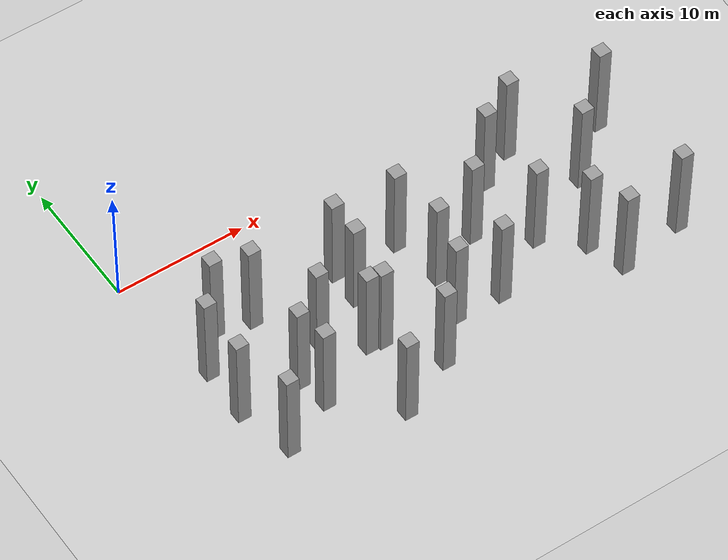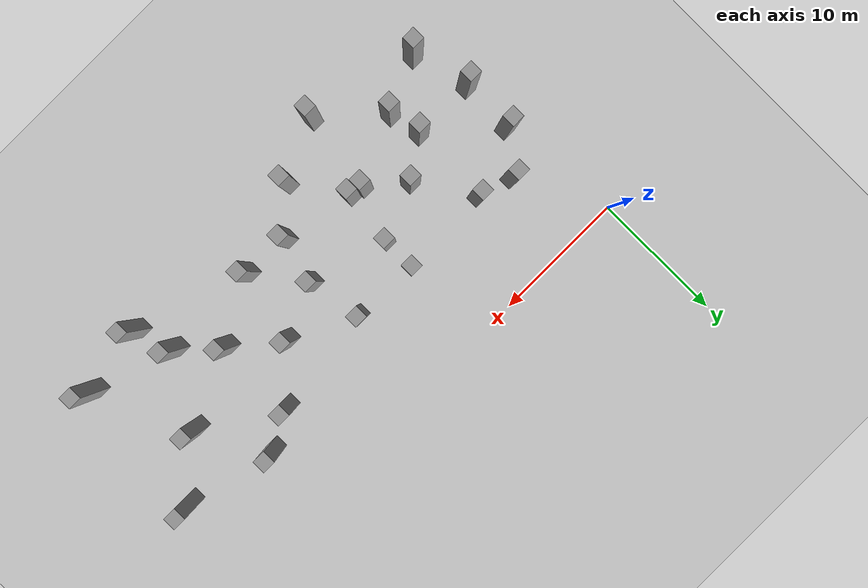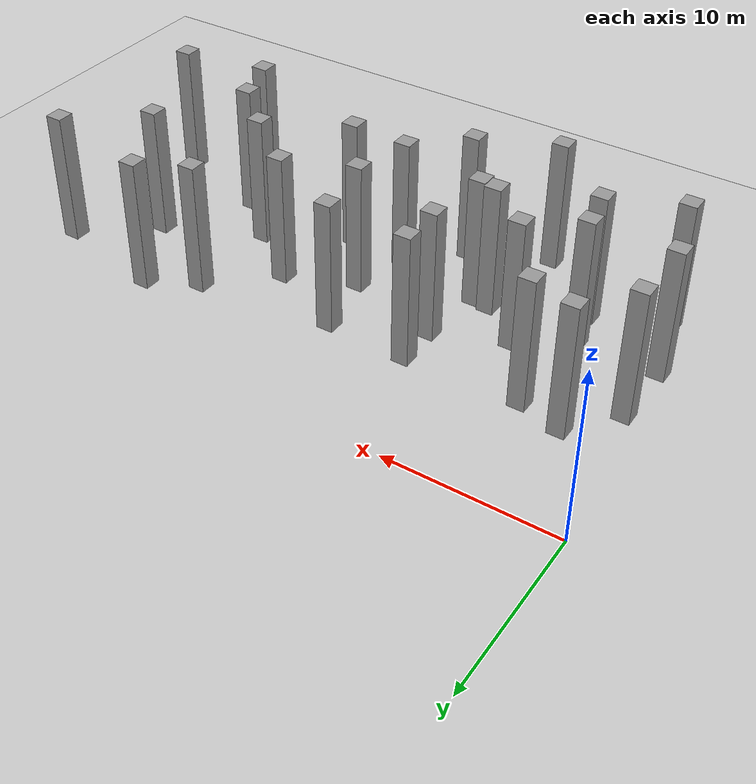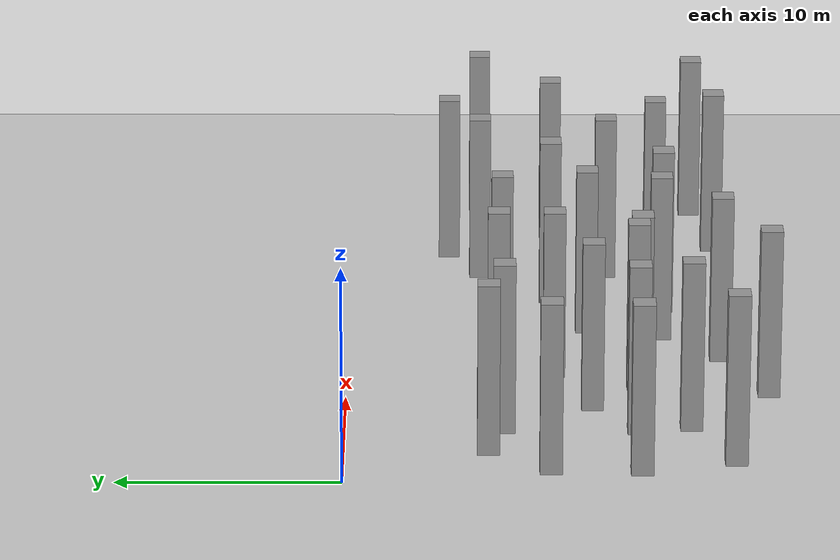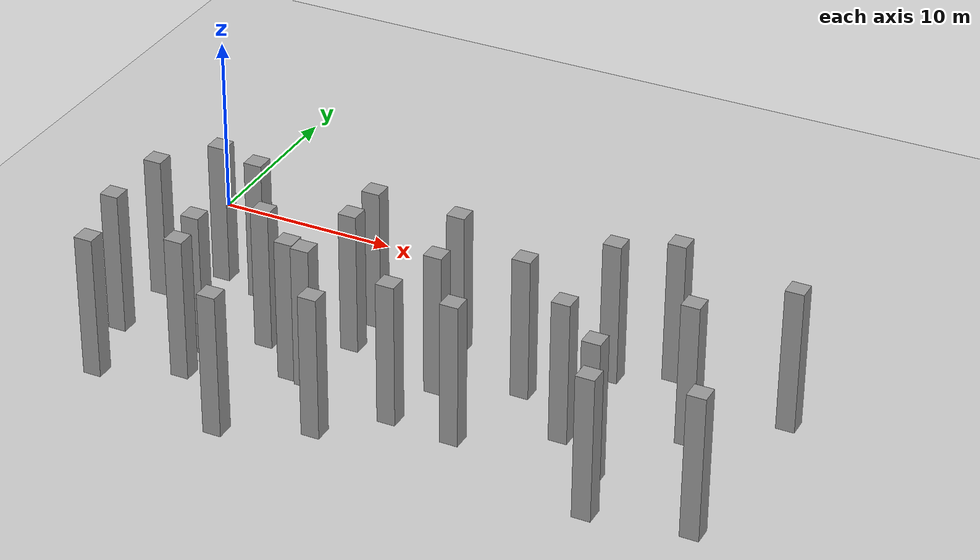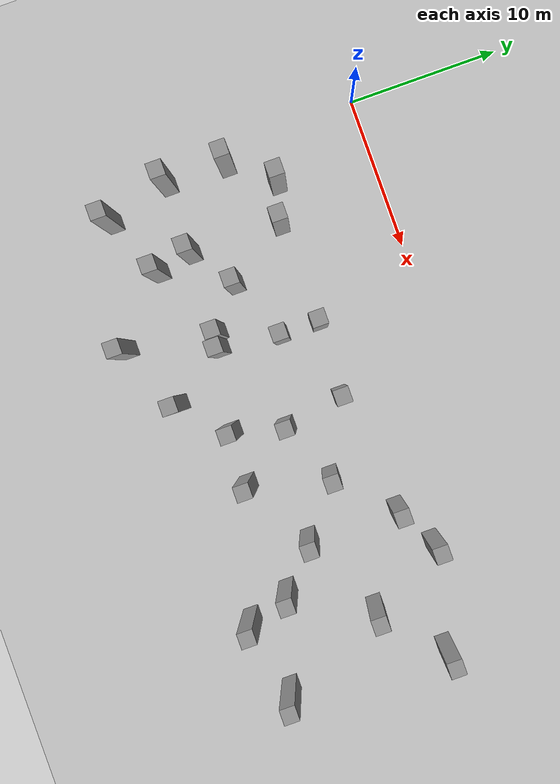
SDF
<sdf version="1.7">
 <world name="default">
  <model name="ground_plane">
   <static>1</static>
   <link name="link">
    <collision name="collision">
     <geometry><plane><normal>0 0 1</normal><size>100 100</size></plane></geometry>
     <surface>
      <contact><collide_bitmask>65535</collide_bitmask></contact>
      <friction><ode><mu>100</mu><mu2>50</mu2></ode></friction>
     </surface>
    </collision>
    <visual name="visual">
     <cast_shadows>0</cast_shadows>
     <geometry><plane><normal>0 0 1</normal><size>100 100</size></plane></geometry>
     <material>
      <script><uri>file://media/materials/scripts/gazebo.material</uri><name>Gazebo/Grey</name></script>
     </material>
    </visual>
   </link>
  </model>
  <model name="unit_box_static6">
   <link name="link">
    <inertial>
     <mass>1</mass>
     <inertia>
      <ixx>0.166667</ixx>
      <ixy>0</ixy>
      <ixz>0</ixz>
      <iyy>0.166667</iyy>
      <iyz>0</iyz>
      <izz>0.166667</izz>
     </inertia>
    </inertial>
    <visual name="visual">
     <geometry><box><size>1 1 8</size></box></geometry>
     <material>
      <script><name>Gazebo/Grey</name><uri>file://media/materials/scripts/gazebo.material</uri></script>
      <shader type="pixel"/>
     </material>
    </visual>
    <collision name="collision">
     <geometry><box><size>1 1 8</size></box></geometry>
     <surface>
      <friction>
       <ode><mu>1</mu><mu2>1</mu2><fdir1>0 0 0</fdir1><slip1>0</slip1><slip2>0</slip2></ode>
       <torsional>
        <coefficient>1</coefficient>
        <patch_radius>0</patch_radius>
        <surface_radius>0</surface_radius>
        <use_patch_radius>1</use_patch_radius>
        <ode><slip>0</slip></ode>
       </torsional>
      </friction>
      <bounce><restitution_coefficient>0</restitution_coefficient><threshold>1e+06</threshold></bounce>
      <contact>
       <collide_without_contact>0</collide_without_contact>
       <collide_without_contact_bitmask>1</collide_without_contact_bitmask>
       <collide_bitmask>1</collide_bitmask>
       <ode>
        <soft_cfm>0</soft_cfm>
        <soft_erp>0.2</soft_erp>
        <kp>1e+13</kp>
        <kd>1</kd>
        <max_vel>0.01</max_vel>
        <min_depth>0</min_depth>
       </ode>
       <bullet>
        <split_impulse>1</split_impulse>
        <split_impulse_penetration_threshold>-0.01</split_impulse_penetration_threshold>
        <soft_cfm>0</soft_cfm>
        <soft_erp>0.2</soft_erp>
        <kp>1e+13</kp>
        <kd>1</kd>
       </bullet>
      </contact>
     </surface>
    </collision>
   </link>
   <static>1</static>
   <pose>17.8761 -7.18164 4 0 -0 0</pose>
  </model>
  <model name="unit_box_static9">
   <link name="link">
    <inertial>
     <mass>1</mass>
     <inertia>
      <ixx>0.166667</ixx>
      <ixy>0</ixy>
      <ixz>0</ixz>
      <iyy>0.166667</iyy>
      <iyz>0</iyz>
      <izz>0.166667</izz>
     </inertia>
    </inertial>
    <visual name="visual">
     <geometry><box><size>1 1 8</size></box></geometry>
     <material>
      <script><name>Gazebo/Grey</name><uri>file://media/materials/scripts/gazebo.material</uri></script>
      <shader type="pixel"/>
     </material>
    </visual>
    <collision name="collision">
     <geometry><box><size>1 1 8</size></box></geometry>
     <surface>
      <friction>
       <ode><mu>1</mu><mu2>1</mu2><fdir1>0 0 0</fdir1><slip1>0</slip1><slip2>0</slip2></ode>
       <torsional>
        <coefficient>1</coefficient>
        <patch_radius>0</patch_radius>
        <surface_radius>0</surface_radius>
        <use_patch_radius>1</use_patch_radius>
        <ode><slip>0</slip></ode>
       </torsional>
      </friction>
      <bounce><restitution_coefficient>0</restitution_coefficient><threshold>1e+06</threshold></bounce>
      <contact>
       <collide_without_contact>0</collide_without_contact>
       <collide_without_contact_bitmask>1</collide_without_contact_bitmask>
       <collide_bitmask>1</collide_bitmask>
       <ode>
        <soft_cfm>0</soft_cfm>
        <soft_erp>0.2</soft_erp>
        <kp>1e+13</kp>
        <kd>1</kd>
        <max_vel>0.01</max_vel>
        <min_depth>0</min_depth>
       </ode>
       <bullet>
        <split_impulse>1</split_impulse>
        <split_impulse_penetration_threshold>-0.01</split_impulse_penetration_threshold>
        <soft_cfm>0</soft_cfm>
        <soft_erp>0.2</soft_erp>
        <kp>1e+13</kp>
        <kd>1</kd>
       </bullet>
      </contact>
     </surface>
    </collision>
   </link>
   <static>1</static>
   <pose>25.9957 -12.2092 4 0 -0 0</pose>
  </model>
  <model name="unit_box_static11">
   <link name="link">
    <inertial>
     <mass>1</mass>
     <inertia>
      <ixx>0.166667</ixx>
      <ixy>0</ixy>
      <ixz>0</ixz>
      <iyy>0.166667</iyy>
      <iyz>0</iyz>
      <izz>0.166667</izz>
     </inertia>
    </inertial>
    <visual name="visual">
     <geometry><box><size>1 1 8</size></box></geometry>
     <material>
      <script><name>Gazebo/Grey</name><uri>file://media/materials/scripts/gazebo.material</uri></script>
      <shader type="pixel"/>
     </material>
    </visual>
    <collision name="collision">
     <geometry><box><size>1 1 8</size></box></geometry>
     <surface>
      <friction>
       <ode><mu>1</mu><mu2>1</mu2><fdir1>0 0 0</fdir1><slip1>0</slip1><slip2>0</slip2></ode>
       <torsional>
        <coefficient>1</coefficient>
        <patch_radius>0</patch_radius>
        <surface_radius>0</surface_radius>
        <use_patch_radius>1</use_patch_radius>
        <ode><slip>0</slip></ode>
       </torsional>
      </friction>
      <bounce><restitution_coefficient>0</restitution_coefficient><threshold>1e+06</threshold></bounce>
      <contact>
       <collide_without_contact>0</collide_without_contact>
       <collide_without_contact_bitmask>1</collide_without_contact_bitmask>
       <collide_bitmask>1</collide_bitmask>
       <ode>
        <soft_cfm>0</soft_cfm>
        <soft_erp>0.2</soft_erp>
        <kp>1e+13</kp>
        <kd>1</kd>
        <max_vel>0.01</max_vel>
        <min_depth>0</min_depth>
       </ode>
       <bullet>
        <split_impulse>1</split_impulse>
        <split_impulse_penetration_threshold>-0.01</split_impulse_penetration_threshold>
        <soft_cfm>0</soft_cfm>
        <soft_erp>0.2</soft_erp>
        <kp>1e+13</kp>
        <kd>1</kd>
       </bullet>
      </contact>
     </surface>
    </collision>
   </link>
   <static>1</static>
   <pose>34.8341 -16.6281 4 0 -0 0</pose>
  </model>
  <model name="unit_box_static13">
   <link name="link">
    <inertial>
     <mass>1</mass>
     <inertia>
      <ixx>0.166667</ixx>
      <ixy>0</ixy>
      <ixz>0</ixz>
      <iyy>0.166667</iyy>
      <iyz>0</iyz>
      <izz>0.166667</izz>
     </inertia>
    </inertial>
    <visual name="visual">
     <geometry><box><size>1 1 8</size></box></geometry>
     <material>
      <script><name>Gazebo/Grey</name><uri>file://media/materials/scripts/gazebo.material</uri></script>
      <shader type="pixel"/>
     </material>
    </visual>
    <collision name="collision">
     <geometry><box><size>1 1 8</size></box></geometry>
     <surface>
      <friction>
       <ode><mu>1</mu><mu2>1</mu2><fdir1>0 0 0</fdir1><slip1>0</slip1><slip2>0</slip2></ode>
       <torsional>
        <coefficient>1</coefficient>
        <patch_radius>0</patch_radius>
        <surface_radius>0</surface_radius>
        <use_patch_radius>1</use_patch_radius>
        <ode><slip>0</slip></ode>
       </torsional>
      </friction>
      <bounce><restitution_coefficient>0</restitution_coefficient><threshold>1e+06</threshold></bounce>
      <contact>
       <collide_without_contact>0</collide_without_contact>
       <collide_without_contact_bitmask>1</collide_without_contact_bitmask>
       <collide_bitmask>1</collide_bitmask>
       <ode>
        <soft_cfm>0</soft_cfm>
        <soft_erp>0.2</soft_erp>
        <kp>1e+13</kp>
        <kd>1</kd>
        <max_vel>0.01</max_vel>
        <min_depth>0</min_depth>
       </ode>
       <bullet>
        <split_impulse>1</split_impulse>
        <split_impulse_penetration_threshold>-0.01</split_impulse_penetration_threshold>
        <soft_cfm>0</soft_cfm>
        <soft_erp>0.2</soft_erp>
        <kp>1e+13</kp>
        <kd>1</kd>
       </bullet>
      </contact>
     </surface>
    </collision>
   </link>
   <static>1</static>
   <pose>12.452 -13.5182 4 0 -0 0</pose>
  </model>
  <model name="unit_box_static26">
   <link name="link">
    <inertial>
     <mass>1</mass>
     <inertia>
      <ixx>0.166667</ixx>
      <ixy>0</ixy>
      <ixz>0</ixz>
      <iyy>0.166667</iyy>
      <iyz>0</iyz>
      <izz>0.166667</izz>
     </inertia>
    </inertial>
    <visual name="visual">
     <geometry><box><size>1 1 8</size></box></geometry>
     <material>
      <script><name>Gazebo/Grey</name><uri>file://media/materials/scripts/gazebo.material</uri></script>
      <shader type="pixel"/>
     </material>
    </visual>
    <collision name="collision">
     <geometry><box><size>1 1 8</size></box></geometry>
     <surface>
      <friction>
       <ode><mu>1</mu><mu2>1</mu2><fdir1>0 0 0</fdir1><slip1>0</slip1><slip2>0</slip2></ode>
       <torsional>
        <coefficient>1</coefficient>
        <patch_radius>0</patch_radius>
        <surface_radius>0</surface_radius>
        <use_patch_radius>1</use_patch_radius>
        <ode><slip>0</slip></ode>
       </torsional>
      </friction>
      <bounce><restitution_coefficient>0</restitution_coefficient><threshold>1e+06</threshold></bounce>
      <contact>
       <collide_without_contact>0</collide_without_contact>
       <collide_without_contact_bitmask>1</collide_without_contact_bitmask>
       <collide_bitmask>1</collide_bitmask>
       <ode>
        <soft_cfm>0</soft_cfm>
        <soft_erp>0.2</soft_erp>
        <kp>1e+13</kp>
        <kd>1</kd>
        <max_vel>0.01</max_vel>
        <min_depth>0</min_depth>
       </ode>
       <bullet>
        <split_impulse>1</split_impulse>
        <split_impulse_penetration_threshold>-0.01</split_impulse_penetration_threshold>
        <soft_cfm>0</soft_cfm>
        <soft_erp>0.2</soft_erp>
        <kp>1e+13</kp>
        <kd>1</kd>
       </bullet>
      </contact>
     </surface>
    </collision>
   </link>
   <static>1</static>
   <pose>26.0054 -6.19913 4 0 -0 0</pose>
  </model>
  <model name="unit_box_static41">
   <link name="link">
    <inertial>
     <mass>1</mass>
     <inertia>
      <ixx>0.166667</ixx>
      <ixy>0</ixy>
      <ixz>0</ixz>
      <iyy>0.166667</iyy>
      <iyz>0</iyz>
      <izz>0.166667</izz>
     </inertia>
    </inertial>
    <visual name="visual">
     <geometry><box><size>1 1 8</size></box></geometry>
     <material>
      <script><name>Gazebo/Grey</name><uri>file://media/materials/scripts/gazebo.material</uri></script>
      <shader type="pixel"/>
     </material>
    </visual>
    <collision name="collision">
     <geometry><box><size>1 1 8</size></box></geometry>
     <surface>
      <friction>
       <ode><mu>1</mu><mu2>1</mu2><fdir1>0 0 0</fdir1><slip1>0</slip1><slip2>0</slip2></ode>
       <torsional>
        <coefficient>1</coefficient>
        <patch_radius>0</patch_radius>
        <surface_radius>0</surface_radius>
        <use_patch_radius>1</use_patch_radius>
        <ode><slip>0</slip></ode>
       </torsional>
      </friction>
      <bounce><restitution_coefficient>0</restitution_coefficient><threshold>1e+06</threshold></bounce>
      <contact>
       <collide_without_contact>0</collide_without_contact>
       <collide_without_contact_bitmask>1</collide_without_contact_bitmask>
       <collide_bitmask>1</collide_bitmask>
       <ode>
        <soft_cfm>0</soft_cfm>
        <soft_erp>0.2</soft_erp>
        <kp>1e+13</kp>
        <kd>1</kd>
        <max_vel>0.01</max_vel>
        <min_depth>0</min_depth>
       </ode>
       <bullet>
        <split_impulse>1</split_impulse>
        <split_impulse_penetration_threshold>-0.01</split_impulse_penetration_threshold>
        <soft_cfm>0</soft_cfm>
        <soft_erp>0.2</soft_erp>
        <kp>1e+13</kp>
        <kd>1</kd>
       </bullet>
      </contact>
     </surface>
    </collision>
   </link>
   <static>1</static>
   <pose>22.6177 -9.50582 4 0 -0 0</pose>
  </model>
  <model name="unit_box_static42">
   <link name="link">
    <inertial>
     <mass>1</mass>
     <inertia>
      <ixx>0.166667</ixx>
      <ixy>0</ixy>
      <ixz>0</ixz>
      <iyy>0.166667</iyy>
      <iyz>0</iyz>
      <izz>0.166667</izz>
     </inertia>
    </inertial>
    <visual name="visual">
     <geometry><box><size>1 1 8</size></box></geometry>
     <material>
      <script><name>Gazebo/Grey</name><uri>file://media/materials/scripts/gazebo.material</uri></script>
      <shader type="pixel"/>
     </material>
    </visual>
    <collision name="collision">
     <geometry><box><size>1 1 8</size></box></geometry>
     <surface>
      <friction>
       <ode><mu>1</mu><mu2>1</mu2><fdir1>0 0 0</fdir1><slip1>0</slip1><slip2>0</slip2></ode>
       <torsional>
        <coefficient>1</coefficient>
        <patch_radius>0</patch_radius>
        <surface_radius>0</surface_radius>
        <use_patch_radius>1</use_patch_radius>
        <ode><slip>0</slip></ode>
       </torsional>
      </friction>
      <bounce><restitution_coefficient>0</restitution_coefficient><threshold>1e+06</threshold></bounce>
      <contact>
       <collide_without_contact>0</collide_without_contact>
       <collide_without_contact_bitmask>1</collide_without_contact_bitmask>
       <collide_bitmask>1</collide_bitmask>
       <ode>
        <soft_cfm>0</soft_cfm>
        <soft_erp>0.2</soft_erp>
        <kp>1e+13</kp>
        <kd>1</kd>
        <max_vel>0.01</max_vel>
        <min_depth>0</min_depth>
       </ode>
       <bullet>
        <split_impulse>1</split_impulse>
        <split_impulse_penetration_threshold>-0.01</split_impulse_penetration_threshold>
        <soft_cfm>0</soft_cfm>
        <soft_erp>0.2</soft_erp>
        <kp>1e+13</kp>
        <kd>1</kd>
       </bullet>
      </contact>
     </surface>
    </collision>
   </link>
   <static>1</static>
   <pose>3.5822 -6.43992 4 0 -0 0</pose>
  </model>
  <model name="unit_box_static43">
   <link name="link">
    <inertial>
     <mass>1</mass>
     <inertia>
      <ixx>0.166667</ixx>
      <ixy>0</ixy>
      <ixz>0</ixz>
      <iyy>0.166667</iyy>
      <iyz>0</iyz>
      <izz>0.166667</izz>
     </inertia>
    </inertial>
    <visual name="visual">
     <geometry><box><size>1 1 8</size></box></geometry>
     <material>
      <script><name>Gazebo/Grey</name><uri>file://media/materials/scripts/gazebo.material</uri></script>
      <shader type="pixel"/>
     </material>
    </visual>
    <collision name="collision">
     <geometry><box><size>1 1 8</size></box></geometry>
     <surface>
      <friction>
       <ode><mu>1</mu><mu2>1</mu2><fdir1>0 0 0</fdir1><slip1>0</slip1><slip2>0</slip2></ode>
       <torsional>
        <coefficient>1</coefficient>
        <patch_radius>0</patch_radius>
        <surface_radius>0</surface_radius>
        <use_patch_radius>1</use_patch_radius>
        <ode><slip>0</slip></ode>
       </torsional>
      </friction>
      <bounce><restitution_coefficient>0</restitution_coefficient><threshold>1e+06</threshold></bounce>
      <contact>
       <collide_without_contact>0</collide_without_contact>
       <collide_without_contact_bitmask>1</collide_without_contact_bitmask>
       <collide_bitmask>1</collide_bitmask>
       <ode>
        <soft_cfm>0</soft_cfm>
        <soft_erp>0.2</soft_erp>
        <kp>1e+13</kp>
        <kd>1</kd>
        <max_vel>0.01</max_vel>
        <min_depth>0</min_depth>
       </ode>
       <bullet>
        <split_impulse>1</split_impulse>
        <split_impulse_penetration_threshold>-0.01</split_impulse_penetration_threshold>
        <soft_cfm>0</soft_cfm>
        <soft_erp>0.2</soft_erp>
        <kp>1e+13</kp>
        <kd>1</kd>
       </bullet>
      </contact>
     </surface>
    </collision>
   </link>
   <static>1</static>
   <pose>17.741 -14.5776 4 0 -0 0</pose>
  </model>
  <model name="unit_box_static50">
   <link name="link">
    <inertial>
     <mass>1</mass>
     <inertia>
      <ixx>0.166667</ixx>
      <ixy>0</ixy>
      <ixz>0</ixz>
      <iyy>0.166667</iyy>
      <iyz>0</iyz>
      <izz>0.166667</izz>
     </inertia>
    </inertial>
    <visual name="visual">
     <geometry><box><size>1 1 8</size></box></geometry>
     <material>
      <script><name>Gazebo/Grey</name><uri>file://media/materials/scripts/gazebo.material</uri></script>
      <shader type="pixel"/>
     </material>
    </visual>
    <collision name="collision">
     <geometry><box><size>1 1 8</size></box></geometry>
     <surface>
      <friction>
       <ode><mu>1</mu><mu2>1</mu2><fdir1>0 0 0</fdir1><slip1>0</slip1><slip2>0</slip2></ode>
       <torsional>
        <coefficient>1</coefficient>
        <patch_radius>0</patch_radius>
        <surface_radius>0</surface_radius>
        <use_patch_radius>1</use_patch_radius>
        <ode><slip>0</slip></ode>
       </torsional>
      </friction>
      <bounce><restitution_coefficient>0</restitution_coefficient><threshold>1e+06</threshold></bounce>
      <contact>
       <collide_without_contact>0</collide_without_contact>
       <collide_without_contact_bitmask>1</collide_without_contact_bitmask>
       <collide_bitmask>1</collide_bitmask>
       <ode>
        <soft_cfm>0</soft_cfm>
        <soft_erp>0.2</soft_erp>
        <kp>1e+13</kp>
        <kd>1</kd>
        <max_vel>0.01</max_vel>
        <min_depth>0</min_depth>
       </ode>
       <bullet>
        <split_impulse>1</split_impulse>
        <split_impulse_penetration_threshold>-0.01</split_impulse_penetration_threshold>
        <soft_cfm>0</soft_cfm>
        <soft_erp>0.2</soft_erp>
        <kp>1e+13</kp>
        <kd>1</kd>
       </bullet>
      </contact>
     </surface>
    </collision>
   </link>
   <static>1</static>
   <pose>28.8483 -4.73334 4 0 -0 0</pose>
  </model>
  <model name="unit_box_static76">
   <link name="link">
    <inertial>
     <mass>1</mass>
     <inertia>
      <ixx>0.166667</ixx>
      <ixy>0</ixy>
      <ixz>0</ixz>
      <iyy>0.166667</iyy>
      <iyz>0</iyz>
      <izz>0.166667</izz>
     </inertia>
    </inertial>
    <visual name="visual">
     <geometry><box><size>1 1 8</size></box></geometry>
     <material>
      <script><name>Gazebo/Grey</name><uri>file://media/materials/scripts/gazebo.material</uri></script>
      <shader type="pixel"/>
     </material>
    </visual>
    <collision name="collision">
     <geometry><box><size>1 1 8</size></box></geometry>
     <surface>
      <friction>
       <ode><mu>1</mu><mu2>1</mu2><fdir1>0 0 0</fdir1><slip1>0</slip1><slip2>0</slip2></ode>
       <torsional>
        <coefficient>1</coefficient>
        <patch_radius>0</patch_radius>
        <surface_radius>0</surface_radius>
        <use_patch_radius>1</use_patch_radius>
        <ode><slip>0</slip></ode>
       </torsional>
      </friction>
      <bounce><restitution_coefficient>0</restitution_coefficient><threshold>1e+06</threshold></bounce>
      <contact>
       <collide_without_contact>0</collide_without_contact>
       <collide_without_contact_bitmask>1</collide_without_contact_bitmask>
       <collide_bitmask>1</collide_bitmask>
       <ode>
        <soft_cfm>0</soft_cfm>
        <soft_erp>0.2</soft_erp>
        <kp>1e+13</kp>
        <kd>1</kd>
        <max_vel>0.01</max_vel>
        <min_depth>0</min_depth>
       </ode>
       <bullet>
        <split_impulse>1</split_impulse>
        <split_impulse_penetration_threshold>-0.01</split_impulse_penetration_threshold>
        <soft_cfm>0</soft_cfm>
        <soft_erp>0.2</soft_erp>
        <kp>1e+13</kp>
        <kd>1</kd>
       </bullet>
      </contact>
     </surface>
    </collision>
   </link>
   <static>1</static>
   <pose>35.5996 -6.23962 4 0 -0 0</pose>
  </model>
  <model name="unit_box_static90">
   <link name="link">
    <inertial>
     <mass>1</mass>
     <inertia>
      <ixx>0.166667</ixx>
      <ixy>0</ixy>
      <ixz>0</ixz>
      <iyy>0.166667</iyy>
      <iyz>0</iyz>
      <izz>0.166667</izz>
     </inertia>
    </inertial>
    <visual name="visual">
     <geometry><box><size>1 1 8</size></box></geometry>
     <material>
      <script><name>Gazebo/Grey</name><uri>file://media/materials/scripts/gazebo.material</uri></script>
      <shader type="pixel"/>
     </material>
    </visual>
    <collision name="collision">
     <geometry><box><size>1 1 8</size></box></geometry>
     <surface>
      <friction>
       <ode><mu>1</mu><mu2>1</mu2><fdir1>0 0 0</fdir1><slip1>0</slip1><slip2>0</slip2></ode>
       <torsional>
        <coefficient>1</coefficient>
        <patch_radius>0</patch_radius>
        <surface_radius>0</surface_radius>
        <use_patch_radius>1</use_patch_radius>
        <ode><slip>0</slip></ode>
       </torsional>
      </friction>
      <bounce><restitution_coefficient>0</restitution_coefficient><threshold>1e+06</threshold></bounce>
      <contact>
       <collide_without_contact>0</collide_without_contact>
       <collide_without_contact_bitmask>1</collide_without_contact_bitmask>
       <collide_bitmask>1</collide_bitmask>
       <ode>
        <soft_cfm>0</soft_cfm>
        <soft_erp>0.2</soft_erp>
        <kp>1e+13</kp>
        <kd>1</kd>
        <max_vel>0.01</max_vel>
        <min_depth>0</min_depth>
       </ode>
       <bullet>
        <split_impulse>1</split_impulse>
        <split_impulse_penetration_threshold>-0.01</split_impulse_penetration_threshold>
        <soft_cfm>0</soft_cfm>
        <soft_erp>0.2</soft_erp>
        <kp>1e+13</kp>
        <kd>1</kd>
       </bullet>
      </contact>
     </surface>
    </collision>
   </link>
   <static>1</static>
   <pose>29.6703 -17.5053 4 0 -0 0</pose>
  </model>
  <model name="unit_box_static92">
   <link name="link">
    <inertial>
     <mass>1</mass>
     <inertia>
      <ixx>0.166667</ixx>
      <ixy>0</ixy>
      <ixz>0</ixz>
      <iyy>0.166667</iyy>
      <iyz>0</iyz>
      <izz>0.166667</izz>
     </inertia>
    </inertial>
    <visual name="visual">
     <geometry><box><size>1 1 8</size></box></geometry>
     <material>
      <script><name>Gazebo/Grey</name><uri>file://media/materials/scripts/gazebo.material</uri></script>
      <shader type="pixel"/>
     </material>
    </visual>
    <collision name="collision">
     <geometry><box><size>1 1 8</size></box></geometry>
     <surface>
      <friction>
       <ode><mu>1</mu><mu2>1</mu2><fdir1>0 0 0</fdir1><slip1>0</slip1><slip2>0</slip2></ode>
       <torsional>
        <coefficient>1</coefficient>
        <patch_radius>0</patch_radius>
        <surface_radius>0</surface_radius>
        <use_patch_radius>1</use_patch_radius>
        <ode><slip>0</slip></ode>
       </torsional>
      </friction>
      <bounce><restitution_coefficient>0</restitution_coefficient><threshold>1e+06</threshold></bounce>
      <contact>
       <collide_without_contact>0</collide_without_contact>
       <collide_without_contact_bitmask>1</collide_without_contact_bitmask>
       <collide_bitmask>1</collide_bitmask>
       <ode>
        <soft_cfm>0</soft_cfm>
        <soft_erp>0.2</soft_erp>
        <kp>1e+13</kp>
        <kd>1</kd>
        <max_vel>0.01</max_vel>
        <min_depth>0</min_depth>
       </ode>
       <bullet>
        <split_impulse>1</split_impulse>
        <split_impulse_penetration_threshold>-0.01</split_impulse_penetration_threshold>
        <soft_cfm>0</soft_cfm>
        <soft_erp>0.2</soft_erp>
        <kp>1e+13</kp>
        <kd>1</kd>
       </bullet>
      </contact>
     </surface>
    </collision>
   </link>
   <static>1</static>
   <pose>11.418 -13.3237 4 0 -0 0</pose>
  </model>
  <model name="unit_box_static95">
   <link name="link">
    <inertial>
     <mass>1</mass>
     <inertia>
      <ixx>0.166667</ixx>
      <ixy>0</ixy>
      <ixz>0</ixz>
      <iyy>0.166667</iyy>
      <iyz>0</iyz>
      <izz>0.166667</izz>
     </inertia>
    </inertial>
    <visual name="visual">
     <geometry><box><size>1 1 8</size></box></geometry>
     <material>
      <script><name>Gazebo/Grey</name><uri>file://media/materials/scripts/gazebo.material</uri></script>
      <shader type="pixel"/>
     </material>
    </visual>
    <collision name="collision">
     <geometry><box><size>1 1 8</size></box></geometry>
     <surface>
      <friction>
       <ode><mu>1</mu><mu2>1</mu2><fdir1>0 0 0</fdir1><slip1>0</slip1><slip2>0</slip2></ode>
       <torsional>
        <coefficient>1</coefficient>
        <patch_radius>0</patch_radius>
        <surface_radius>0</surface_radius>
        <use_patch_radius>1</use_patch_radius>
        <ode><slip>0</slip></ode>
       </torsional>
      </friction>
      <bounce><restitution_coefficient>0</restitution_coefficient><threshold>1e+06</threshold></bounce>
      <contact>
       <collide_without_contact>0</collide_without_contact>
       <collide_without_contact_bitmask>1</collide_without_contact_bitmask>
       <collide_bitmask>1</collide_bitmask>
       <ode>
        <soft_cfm>0</soft_cfm>
        <soft_erp>0.2</soft_erp>
        <kp>1e+13</kp>
        <kd>1</kd>
        <max_vel>0.01</max_vel>
        <min_depth>0</min_depth>
       </ode>
       <bullet>
        <split_impulse>1</split_impulse>
        <split_impulse_penetration_threshold>-0.01</split_impulse_penetration_threshold>
        <soft_cfm>0</soft_cfm>
        <soft_erp>0.2</soft_erp>
        <kp>1e+13</kp>
        <kd>1</kd>
       </bullet>
      </contact>
     </surface>
    </collision>
   </link>
   <static>1</static>
   <pose>12.9575 -6.97406 4 0 -0 0</pose>
  </model>
  <model name="unit_box_static107">
   <link name="link">
    <inertial>
     <mass>1</mass>
     <inertia>
      <ixx>0.166667</ixx>
      <ixy>0</ixy>
      <ixz>0</ixz>
      <iyy>0.166667</iyy>
      <iyz>0</iyz>
      <izz>0.166667</izz>
     </inertia>
    </inertial>
    <visual name="visual">
     <geometry><box><size>1 1 8</size></box></geometry>
     <material>
      <script><name>Gazebo/Grey</name><uri>file://media/materials/scripts/gazebo.material</uri></script>
      <shader type="pixel"/>
     </material>
    </visual>
    <collision name="collision">
     <geometry><box><size>1 1 8</size></box></geometry>
     <surface>
      <friction>
       <ode><mu>1</mu><mu2>1</mu2><fdir1>0 0 0</fdir1><slip1>0</slip1><slip2>0</slip2></ode>
       <torsional>
        <coefficient>1</coefficient>
        <patch_radius>0</patch_radius>
        <surface_radius>0</surface_radius>
        <use_patch_radius>1</use_patch_radius>
        <ode><slip>0</slip></ode>
       </torsional>
      </friction>
      <bounce><restitution_coefficient>0</restitution_coefficient><threshold>1e+06</threshold></bounce>
      <contact>
       <collide_without_contact>0</collide_without_contact>
       <collide_without_contact_bitmask>1</collide_without_contact_bitmask>
       <collide_bitmask>1</collide_bitmask>
       <ode>
        <soft_cfm>0</soft_cfm>
        <soft_erp>0.2</soft_erp>
        <kp>1e+13</kp>
        <kd>1</kd>
        <max_vel>0.01</max_vel>
        <min_depth>0</min_depth>
       </ode>
       <bullet>
        <split_impulse>1</split_impulse>
        <split_impulse_penetration_threshold>-0.01</split_impulse_penetration_threshold>
        <soft_cfm>0</soft_cfm>
        <soft_erp>0.2</soft_erp>
        <kp>1e+13</kp>
        <kd>1</kd>
       </bullet>
      </contact>
     </surface>
    </collision>
   </link>
   <static>1</static>
   <pose>6.45567 -15.5784 4 0 -0 0</pose>
  </model>
  <model name="unit_box_static112">
   <link name="link">
    <inertial>
     <mass>1</mass>
     <inertia>
      <ixx>0.166667</ixx>
      <ixy>0</ixy>
      <ixz>0</ixz>
      <iyy>0.166667</iyy>
      <iyz>0</iyz>
      <izz>0.166667</izz>
     </inertia>
    </inertial>
    <visual name="visual">
     <geometry><box><size>1 1 8</size></box></geometry>
     <material>
      <script><name>Gazebo/Grey</name><uri>file://media/materials/scripts/gazebo.material</uri></script>
      <shader type="pixel"/>
     </material>
    </visual>
    <collision name="collision">
     <geometry><box><size>1 1 8</size></box></geometry>
     <surface>
      <friction>
       <ode><mu>1</mu><mu2>1</mu2><fdir1>0 0 0</fdir1><slip1>0</slip1><slip2>0</slip2></ode>
       <torsional>
        <coefficient>1</coefficient>
        <patch_radius>0</patch_radius>
        <surface_radius>0</surface_radius>
        <use_patch_radius>1</use_patch_radius>
        <ode><slip>0</slip></ode>
       </torsional>
      </friction>
      <bounce><restitution_coefficient>0</restitution_coefficient><threshold>1e+06</threshold></bounce>
      <contact>
       <collide_without_contact>0</collide_without_contact>
       <collide_without_contact_bitmask>1</collide_without_contact_bitmask>
       <collide_bitmask>1</collide_bitmask>
       <ode>
        <soft_cfm>0</soft_cfm>
        <soft_erp>0.2</soft_erp>
        <kp>1e+13</kp>
        <kd>1</kd>
        <max_vel>0.01</max_vel>
        <min_depth>0</min_depth>
       </ode>
       <bullet>
        <split_impulse>1</split_impulse>
        <split_impulse_penetration_threshold>-0.01</split_impulse_penetration_threshold>
        <soft_cfm>0</soft_cfm>
        <soft_erp>0.2</soft_erp>
        <kp>1e+13</kp>
        <kd>1</kd>
       </bullet>
      </contact>
     </surface>
    </collision>
   </link>
   <static>1</static>
   <pose>14.9403 -17.2708 4 0 -0 0</pose>
  </model>
  <model name="unit_box_static122">
   <link name="link">
    <inertial>
     <mass>1</mass>
     <inertia>
      <ixx>0.166667</ixx>
      <ixy>0</ixy>
      <ixz>0</ixz>
      <iyy>0.166667</iyy>
      <iyz>0</iyz>
      <izz>0.166667</izz>
     </inertia>
    </inertial>
    <visual name="visual">
     <geometry><box><size>1 1 8</size></box></geometry>
     <material>
      <script><name>Gazebo/Grey</name><uri>file://media/materials/scripts/gazebo.material</uri></script>
      <shader type="pixel"/>
     </material>
    </visual>
    <collision name="collision">
     <geometry><box><size>1 1 8</size></box></geometry>
     <surface>
      <friction>
       <ode><mu>1</mu><mu2>1</mu2><fdir1>0 0 0</fdir1><slip1>0</slip1><slip2>0</slip2></ode>
       <torsional>
        <coefficient>1</coefficient>
        <patch_radius>0</patch_radius>
        <surface_radius>0</surface_radius>
        <use_patch_radius>1</use_patch_radius>
        <ode><slip>0</slip></ode>
       </torsional>
      </friction>
      <bounce><restitution_coefficient>0</restitution_coefficient><threshold>1e+06</threshold></bounce>
      <contact>
       <collide_without_contact>0</collide_without_contact>
       <collide_without_contact_bitmask>1</collide_without_contact_bitmask>
       <collide_bitmask>1</collide_bitmask>
       <ode>
        <soft_cfm>0</soft_cfm>
        <soft_erp>0.2</soft_erp>
        <kp>1e+13</kp>
        <kd>1</kd>
        <max_vel>0.01</max_vel>
        <min_depth>0</min_depth>
       </ode>
       <bullet>
        <split_impulse>1</split_impulse>
        <split_impulse_penetration_threshold>-0.01</split_impulse_penetration_threshold>
        <soft_cfm>0</soft_cfm>
        <soft_erp>0.2</soft_erp>
        <kp>1e+13</kp>
        <kd>1</kd>
       </bullet>
      </contact>
     </surface>
    </collision>
   </link>
   <static>1</static>
   <pose>12.9654 -9.52103 4 0 -0 0</pose>
  </model>
  <model name="unit_box_static133">
   <link name="link">
    <inertial>
     <mass>1</mass>
     <inertia>
      <ixx>0.166667</ixx>
      <ixy>0</ixy>
      <ixz>0</ixz>
      <iyy>0.166667</iyy>
      <iyz>0</iyz>
      <izz>0.166667</izz>
     </inertia>
    </inertial>
    <visual name="visual">
     <geometry><box><size>1 1 8</size></box></geometry>
     <material>
      <script><name>Gazebo/Grey</name><uri>file://media/materials/scripts/gazebo.material</uri></script>
      <shader type="pixel"/>
     </material>
    </visual>
    <collision name="collision">
     <geometry><box><size>1 1 8</size></box></geometry>
     <surface>
      <friction>
       <ode><mu>1</mu><mu2>1</mu2><fdir1>0 0 0</fdir1><slip1>0</slip1><slip2>0</slip2></ode>
       <torsional>
        <coefficient>1</coefficient>
        <patch_radius>0</patch_radius>
        <surface_radius>0</surface_radius>
        <use_patch_radius>1</use_patch_radius>
        <ode><slip>0</slip></ode>
       </torsional>
      </friction>
      <bounce><restitution_coefficient>0</restitution_coefficient><threshold>1e+06</threshold></bounce>
      <contact>
       <collide_without_contact>0</collide_without_contact>
       <collide_without_contact_bitmask>1</collide_without_contact_bitmask>
       <collide_bitmask>1</collide_bitmask>
       <ode>
        <soft_cfm>0</soft_cfm>
        <soft_erp>0.2</soft_erp>
        <kp>1e+13</kp>
        <kd>1</kd>
        <max_vel>0.01</max_vel>
        <min_depth>0</min_depth>
       </ode>
       <bullet>
        <split_impulse>1</split_impulse>
        <split_impulse_penetration_threshold>-0.01</split_impulse_penetration_threshold>
        <soft_cfm>0</soft_cfm>
        <soft_erp>0.2</soft_erp>
        <kp>1e+13</kp>
        <kd>1</kd>
       </bullet>
      </contact>
     </surface>
    </collision>
   </link>
   <static>1</static>
   <pose>1.25902 -13.1947 4 0 -0 0</pose>
  </model>
  <model name="unit_box_static137">
   <link name="link">
    <inertial>
     <mass>1</mass>
     <inertia>
      <ixx>0.166667</ixx>
      <ixy>0</ixy>
      <ixz>0</ixz>
      <iyy>0.166667</iyy>
      <iyz>0</iyz>
      <izz>0.166667</izz>
     </inertia>
    </inertial>
    <visual name="visual">
     <geometry><box><size>1 1 8</size></box></geometry>
     <material>
      <script><name>Gazebo/Grey</name><uri>file://media/materials/scripts/gazebo.material</uri></script>
      <shader type="pixel"/>
     </material>
    </visual>
    <collision name="collision">
     <geometry><box><size>1 1 8</size></box></geometry>
     <surface>
      <friction>
       <ode><mu>1</mu><mu2>1</mu2><fdir1>0 0 0</fdir1><slip1>0</slip1><slip2>0</slip2></ode>
       <torsional>
        <coefficient>1</coefficient>
        <patch_radius>0</patch_radius>
        <surface_radius>0</surface_radius>
        <use_patch_radius>1</use_patch_radius>
        <ode><slip>0</slip></ode>
       </torsional>
      </friction>
      <bounce><restitution_coefficient>0</restitution_coefficient><threshold>1e+06</threshold></bounce>
      <contact>
       <collide_without_contact>0</collide_without_contact>
       <collide_without_contact_bitmask>1</collide_without_contact_bitmask>
       <collide_bitmask>1</collide_bitmask>
       <ode>
        <soft_cfm>0</soft_cfm>
        <soft_erp>0.2</soft_erp>
        <kp>1e+13</kp>
        <kd>1</kd>
        <max_vel>0.01</max_vel>
        <min_depth>0</min_depth>
       </ode>
       <bullet>
        <split_impulse>1</split_impulse>
        <split_impulse_penetration_threshold>-0.01</split_impulse_penetration_threshold>
        <soft_cfm>0</soft_cfm>
        <soft_erp>0.2</soft_erp>
        <kp>1e+13</kp>
        <kd>1</kd>
       </bullet>
      </contact>
     </surface>
    </collision>
   </link>
   <static>1</static>
   <pose>6.17406 -7.16334 4 0 -0 0</pose>
  </model>
  <model name="unit_box_static139">
   <link name="link">
    <inertial>
     <mass>1</mass>
     <inertia>
      <ixx>0.166667</ixx>
      <ixy>0</ixy>
      <ixz>0</ixz>
      <iyy>0.166667</iyy>
      <iyz>0</iyz>
      <izz>0.166667</izz>
     </inertia>
    </inertial>
    <visual name="visual">
     <geometry><box><size>1 1 8</size></box></geometry>
     <material>
      <script><name>Gazebo/Grey</name><uri>file://media/materials/scripts/gazebo.material</uri></script>
      <shader type="pixel"/>
     </material>
    </visual>
    <collision name="collision">
     <geometry><box><size>1 1 8</size></box></geometry>
     <surface>
      <friction>
       <ode><mu>1</mu><mu2>1</mu2><fdir1>0 0 0</fdir1><slip1>0</slip1><slip2>0</slip2></ode>
       <torsional>
        <coefficient>1</coefficient>
        <patch_radius>0</patch_radius>
        <surface_radius>0</surface_radius>
        <use_patch_radius>1</use_patch_radius>
        <ode><slip>0</slip></ode>
       </torsional>
      </friction>
      <bounce><restitution_coefficient>0</restitution_coefficient><threshold>1e+06</threshold></bounce>
      <contact>
       <collide_without_contact>0</collide_without_contact>
       <collide_without_contact_bitmask>1</collide_without_contact_bitmask>
       <collide_bitmask>1</collide_bitmask>
       <ode>
        <soft_cfm>0</soft_cfm>
        <soft_erp>0.2</soft_erp>
        <kp>1e+13</kp>
        <kd>1</kd>
        <max_vel>0.01</max_vel>
        <min_depth>0</min_depth>
       </ode>
       <bullet>
        <split_impulse>1</split_impulse>
        <split_impulse_penetration_threshold>-0.01</split_impulse_penetration_threshold>
        <soft_cfm>0</soft_cfm>
        <soft_erp>0.2</soft_erp>
        <kp>1e+13</kp>
        <kd>1</kd>
       </bullet>
      </contact>
     </surface>
    </collision>
   </link>
   <static>1</static>
   <pose>10.5188 -19.269 4 0 -0 0</pose>
  </model>
  <model name="unit_box_static140">
   <link name="link">
    <inertial>
     <mass>1</mass>
     <inertia>
      <ixx>0.166667</ixx>
      <ixy>0</ixy>
      <ixz>0</ixz>
      <iyy>0.166667</iyy>
      <iyz>0</iyz>
      <izz>0.166667</izz>
     </inertia>
    </inertial>
    <visual name="visual">
     <geometry><box><size>1 1 8</size></box></geometry>
     <material>
      <script><name>Gazebo/Grey</name><uri>file://media/materials/scripts/gazebo.material</uri></script>
      <shader type="pixel"/>
     </material>
    </visual>
    <collision name="collision">
     <geometry><box><size>1 1 8</size></box></geometry>
     <surface>
      <friction>
       <ode><mu>1</mu><mu2>1</mu2><fdir1>0 0 0</fdir1><slip1>0</slip1><slip2>0</slip2></ode>
       <torsional>
        <coefficient>1</coefficient>
        <patch_radius>0</patch_radius>
        <surface_radius>0</surface_radius>
        <use_patch_radius>1</use_patch_radius>
        <ode><slip>0</slip></ode>
       </torsional>
      </friction>
      <bounce><restitution_coefficient>0</restitution_coefficient><threshold>1e+06</threshold></bounce>
      <contact>
       <collide_without_contact>0</collide_without_contact>
       <collide_without_contact_bitmask>1</collide_without_contact_bitmask>
       <collide_bitmask>1</collide_bitmask>
       <ode>
        <soft_cfm>0</soft_cfm>
        <soft_erp>0.2</soft_erp>
        <kp>1e+13</kp>
        <kd>1</kd>
        <max_vel>0.01</max_vel>
        <min_depth>0</min_depth>
       </ode>
       <bullet>
        <split_impulse>1</split_impulse>
        <split_impulse_penetration_threshold>-0.01</split_impulse_penetration_threshold>
        <soft_cfm>0</soft_cfm>
        <soft_erp>0.2</soft_erp>
        <kp>1e+13</kp>
        <kd>1</kd>
       </bullet>
      </contact>
     </surface>
    </collision>
   </link>
   <static>1</static>
   <pose>18.5894 -11.1366 4 0 -0 0</pose>
  </model>
  <model name="unit_box_static147">
   <link name="link">
    <inertial>
     <mass>1</mass>
     <inertia>
      <ixx>0.166667</ixx>
      <ixy>0</ixy>
      <ixz>0</ixz>
      <iyy>0.166667</iyy>
      <iyz>0</iyz>
      <izz>0.166667</izz>
     </inertia>
    </inertial>
    <visual name="visual">
     <geometry><box><size>1 1 8</size></box></geometry>
     <material>
      <script><name>Gazebo/Grey</name><uri>file://media/materials/scripts/gazebo.material</uri></script>
      <shader type="pixel"/>
     </material>
    </visual>
    <collision name="collision">
     <geometry><box><size>1 1 8</size></box></geometry>
     <surface>
      <friction>
       <ode><mu>1</mu><mu2>1</mu2><fdir1>0 0 0</fdir1><slip1>0</slip1><slip2>0</slip2></ode>
       <torsional>
        <coefficient>1</coefficient>
        <patch_radius>0</patch_radius>
        <surface_radius>0</surface_radius>
        <use_patch_radius>1</use_patch_radius>
        <ode><slip>0</slip></ode>
       </torsional>
      </friction>
      <bounce><restitution_coefficient>0</restitution_coefficient><threshold>1e+06</threshold></bounce>
      <contact>
       <collide_without_contact>0</collide_without_contact>
       <collide_without_contact_bitmask>1</collide_without_contact_bitmask>
       <collide_bitmask>1</collide_bitmask>
       <ode>
        <soft_cfm>0</soft_cfm>
        <soft_erp>0.2</soft_erp>
        <kp>1e+13</kp>
        <kd>1</kd>
        <max_vel>0.01</max_vel>
        <min_depth>0</min_depth>
       </ode>
       <bullet>
        <split_impulse>1</split_impulse>
        <split_impulse_penetration_threshold>-0.01</split_impulse_penetration_threshold>
        <soft_cfm>0</soft_cfm>
        <soft_erp>0.2</soft_erp>
        <kp>1e+13</kp>
        <kd>1</kd>
       </bullet>
      </contact>
     </surface>
    </collision>
   </link>
   <static>1</static>
   <pose>21.3098 -14.7887 4 0 -0 0</pose>
  </model>
  <model name="unit_box_static150">
   <link name="link">
    <inertial>
     <mass>1</mass>
     <inertia>
      <ixx>0.166667</ixx>
      <ixy>0</ixy>
      <ixz>0</ixz>
      <iyy>0.166667</iyy>
      <iyz>0</iyz>
      <izz>0.166667</izz>
     </inertia>
    </inertial>
    <visual name="visual">
     <geometry><box><size>1 1 8</size></box></geometry>
     <material>
      <script><name>Gazebo/Grey</name><uri>file://media/materials/scripts/gazebo.material</uri></script>
      <shader type="pixel"/>
     </material>
    </visual>
    <collision name="collision">
     <geometry><box><size>1 1 8</size></box></geometry>
     <surface>
      <friction>
       <ode><mu>1</mu><mu2>1</mu2><fdir1>0 0 0</fdir1><slip1>0</slip1><slip2>0</slip2></ode>
       <torsional>
        <coefficient>1</coefficient>
        <patch_radius>0</patch_radius>
        <surface_radius>0</surface_radius>
        <use_patch_radius>1</use_patch_radius>
        <ode><slip>0</slip></ode>
       </torsional>
      </friction>
      <bounce><restitution_coefficient>0</restitution_coefficient><threshold>1e+06</threshold></bounce>
      <contact>
       <collide_without_contact>0</collide_without_contact>
       <collide_without_contact_bitmask>1</collide_without_contact_bitmask>
       <collide_bitmask>1</collide_bitmask>
       <ode>
        <soft_cfm>0</soft_cfm>
        <soft_erp>0.2</soft_erp>
        <kp>1e+13</kp>
        <kd>1</kd>
        <max_vel>0.01</max_vel>
        <min_depth>0</min_depth>
       </ode>
       <bullet>
        <split_impulse>1</split_impulse>
        <split_impulse_penetration_threshold>-0.01</split_impulse_penetration_threshold>
        <soft_cfm>0</soft_cfm>
        <soft_erp>0.2</soft_erp>
        <kp>1e+13</kp>
        <kd>1</kd>
       </bullet>
      </contact>
     </surface>
    </collision>
   </link>
   <static>1</static>
   <pose>31.6273 -9.65085 4 0 -0 0</pose>
  </model>
  <model name="unit_box_static156">
   <link name="link">
    <inertial>
     <mass>1</mass>
     <inertia>
      <ixx>0.166667</ixx>
      <ixy>0</ixy>
      <ixz>0</ixz>
      <iyy>0.166667</iyy>
      <iyz>0</iyz>
      <izz>0.166667</izz>
     </inertia>
    </inertial>
    <visual name="visual">
     <geometry><box><size>1 1 8</size></box></geometry>
     <material>
      <script><name>Gazebo/Grey</name><uri>file://media/materials/scripts/gazebo.material</uri></script>
      <shader type="pixel"/>
     </material>
    </visual>
    <collision name="collision">
     <geometry><box><size>1 1 8</size></box></geometry>
     <surface>
      <friction>
       <ode><mu>1</mu><mu2>1</mu2><fdir1>0 0 0</fdir1><slip1>0</slip1><slip2>0</slip2></ode>
       <torsional>
        <coefficient>1</coefficient>
        <patch_radius>0</patch_radius>
        <surface_radius>0</surface_radius>
        <use_patch_radius>1</use_patch_radius>
        <ode><slip>0</slip></ode>
       </torsional>
      </friction>
      <bounce><restitution_coefficient>0</restitution_coefficient><threshold>1e+06</threshold></bounce>
      <contact>
       <collide_without_contact>0</collide_without_contact>
       <collide_without_contact_bitmask>1</collide_without_contact_bitmask>
       <collide_bitmask>1</collide_bitmask>
       <ode>
        <soft_cfm>0</soft_cfm>
        <soft_erp>0.2</soft_erp>
        <kp>1e+13</kp>
        <kd>1</kd>
        <max_vel>0.01</max_vel>
        <min_depth>0</min_depth>
       </ode>
       <bullet>
        <split_impulse>1</split_impulse>
        <split_impulse_penetration_threshold>-0.01</split_impulse_penetration_threshold>
        <soft_cfm>0</soft_cfm>
        <soft_erp>0.2</soft_erp>
        <kp>1e+13</kp>
        <kd>1</kd>
       </bullet>
      </contact>
     </surface>
    </collision>
   </link>
   <static>1</static>
   <pose>28.6942 -14.6691 4 0 -0 0</pose>
  </model>
  <model name="unit_box_static157">
   <link name="link">
    <inertial>
     <mass>1</mass>
     <inertia>
      <ixx>0.166667</ixx>
      <ixy>0</ixy>
      <ixz>0</ixz>
      <iyy>0.166667</iyy>
      <iyz>0</iyz>
      <izz>0.166667</izz>
     </inertia>
    </inertial>
    <visual name="visual">
     <geometry><box><size>1 1 8</size></box></geometry>
     <material>
      <script><name>Gazebo/Grey</name><uri>file://media/materials/scripts/gazebo.material</uri></script>
      <shader type="pixel"/>
     </material>
    </visual>
    <collision name="collision">
     <geometry><box><size>1 1 8</size></box></geometry>
     <surface>
      <friction>
       <ode><mu>1</mu><mu2>1</mu2><fdir1>0 0 0</fdir1><slip1>0</slip1><slip2>0</slip2></ode>
       <torsional>
        <coefficient>1</coefficient>
        <patch_radius>0</patch_radius>
        <surface_radius>0</surface_radius>
        <use_patch_radius>1</use_patch_radius>
        <ode><slip>0</slip></ode>
       </torsional>
      </friction>
      <bounce><restitution_coefficient>0</restitution_coefficient><threshold>1e+06</threshold></bounce>
      <contact>
       <collide_without_contact>0</collide_without_contact>
       <collide_without_contact_bitmask>1</collide_without_contact_bitmask>
       <collide_bitmask>1</collide_bitmask>
       <ode>
        <soft_cfm>0</soft_cfm>
        <soft_erp>0.2</soft_erp>
        <kp>1e+13</kp>
        <kd>1</kd>
        <max_vel>0.01</max_vel>
        <min_depth>0</min_depth>
       </ode>
       <bullet>
        <split_impulse>1</split_impulse>
        <split_impulse_penetration_threshold>-0.01</split_impulse_penetration_threshold>
        <soft_cfm>0</soft_cfm>
        <soft_erp>0.2</soft_erp>
        <kp>1e+13</kp>
        <kd>1</kd>
       </bullet>
      </contact>
     </surface>
    </collision>
   </link>
   <static>1</static>
   <pose>6.00186 -13.1955 4 0 -0 0</pose>
  </model>
  <model name="unit_box_static166">
   <link name="link">
    <inertial>
     <mass>1</mass>
     <inertia>
      <ixx>0.166667</ixx>
      <ixy>0</ixy>
      <ixz>0</ixz>
      <iyy>0.166667</iyy>
      <iyz>0</iyz>
      <izz>0.166667</izz>
     </inertia>
    </inertial>
    <visual name="visual">
     <geometry><box><size>1 1 8</size></box></geometry>
     <material>
      <script><name>Gazebo/Grey</name><uri>file://media/materials/scripts/gazebo.material</uri></script>
      <shader type="pixel"/>
     </material>
    </visual>
    <collision name="collision">
     <geometry><box><size>1 1 8</size></box></geometry>
     <surface>
      <friction>
       <ode><mu>1</mu><mu2>1</mu2><fdir1>0 0 0</fdir1><slip1>0</slip1><slip2>0</slip2></ode>
       <torsional>
        <coefficient>1</coefficient>
        <patch_radius>0</patch_radius>
        <surface_radius>0</surface_radius>
        <use_patch_radius>1</use_patch_radius>
        <ode><slip>0</slip></ode>
       </torsional>
      </friction>
      <bounce><restitution_coefficient>0</restitution_coefficient><threshold>1e+06</threshold></bounce>
      <contact>
       <collide_without_contact>0</collide_without_contact>
       <collide_without_contact_bitmask>1</collide_without_contact_bitmask>
       <collide_bitmask>1</collide_bitmask>
       <ode>
        <soft_cfm>0</soft_cfm>
        <soft_erp>0.2</soft_erp>
        <kp>1e+13</kp>
        <kd>1</kd>
        <max_vel>0.01</max_vel>
        <min_depth>0</min_depth>
       </ode>
       <bullet>
        <split_impulse>1</split_impulse>
        <split_impulse_penetration_threshold>-0.01</split_impulse_penetration_threshold>
        <soft_cfm>0</soft_cfm>
        <soft_erp>0.2</soft_erp>
        <kp>1e+13</kp>
        <kd>1</kd>
       </bullet>
      </contact>
     </surface>
    </collision>
   </link>
   <static>1</static>
   <pose>2.39171 -17.3966 4 0 -0 0</pose>
  </model>
  <model name="unit_box_static169">
   <link name="link">
    <inertial>
     <mass>1</mass>
     <inertia>
      <ixx>0.166667</ixx>
      <ixy>0</ixy>
      <ixz>0</ixz>
      <iyy>0.166667</iyy>
      <iyz>0</iyz>
      <izz>0.166667</izz>
     </inertia>
    </inertial>
    <visual name="visual">
     <geometry><box><size>1 1 8</size></box></geometry>
     <material>
      <script><name>Gazebo/Grey</name><uri>file://media/materials/scripts/gazebo.material</uri></script>
      <shader type="pixel"/>
     </material>
    </visual>
    <collision name="collision">
     <geometry><box><size>1 1 8</size></box></geometry>
     <surface>
      <friction>
       <ode><mu>1</mu><mu2>1</mu2><fdir1>0 0 0</fdir1><slip1>0</slip1><slip2>0</slip2></ode>
       <torsional>
        <coefficient>1</coefficient>
        <patch_radius>0</patch_radius>
        <surface_radius>0</surface_radius>
        <use_patch_radius>1</use_patch_radius>
        <ode><slip>0</slip></ode>
       </torsional>
      </friction>
      <bounce><restitution_coefficient>0</restitution_coefficient><threshold>1e+06</threshold></bounce>
      <contact>
       <collide_without_contact>0</collide_without_contact>
       <collide_without_contact_bitmask>1</collide_without_contact_bitmask>
       <collide_bitmask>1</collide_bitmask>
       <ode>
        <soft_cfm>0</soft_cfm>
        <soft_erp>0.2</soft_erp>
        <kp>1e+13</kp>
        <kd>1</kd>
        <max_vel>0.01</max_vel>
        <min_depth>0</min_depth>
       </ode>
       <bullet>
        <split_impulse>1</split_impulse>
        <split_impulse_penetration_threshold>-0.01</split_impulse_penetration_threshold>
        <soft_cfm>0</soft_cfm>
        <soft_erp>0.2</soft_erp>
        <kp>1e+13</kp>
        <kd>1</kd>
       </bullet>
      </contact>
     </surface>
    </collision>
   </link>
   <static>1</static>
   <pose>8.85657 -11.1911 4 0 -0 0</pose>
  </model>
  <model name="unit_box_static183">
   <link name="link">
    <inertial>
     <mass>1</mass>
     <inertia>
      <ixx>0.166667</ixx>
      <ixy>0</ixy>
      <ixz>0</ixz>
      <iyy>0.166667</iyy>
      <iyz>0</iyz>
      <izz>0.166667</izz>
     </inertia>
    </inertial>
    <visual name="visual">
     <geometry><box><size>1 1 8</size></box></geometry>
     <material>
      <script><name>Gazebo/Grey</name><uri>file://media/materials/scripts/gazebo.material</uri></script>
      <shader type="pixel"/>
     </material>
    </visual>
    <collision name="collision">
     <geometry><box><size>1 1 8</size></box></geometry>
     <surface>
      <friction>
       <ode><mu>1</mu><mu2>1</mu2><fdir1>0 0 0</fdir1><slip1>0</slip1><slip2>0</slip2></ode>
       <torsional>
        <coefficient>1</coefficient>
        <patch_radius>0</patch_radius>
        <surface_radius>0</surface_radius>
        <use_patch_radius>1</use_patch_radius>
        <ode><slip>0</slip></ode>
       </torsional>
      </friction>
      <bounce><restitution_coefficient>0</restitution_coefficient><threshold>1e+06</threshold></bounce>
      <contact>
       <collide_without_contact>0</collide_without_contact>
       <collide_without_contact_bitmask>1</collide_without_contact_bitmask>
       <collide_bitmask>1</collide_bitmask>
       <ode>
        <soft_cfm>0</soft_cfm>
        <soft_erp>0.2</soft_erp>
        <kp>1e+13</kp>
        <kd>1</kd>
        <max_vel>0.01</max_vel>
        <min_depth>0</min_depth>
       </ode>
       <bullet>
        <split_impulse>1</split_impulse>
        <split_impulse_penetration_threshold>-0.01</split_impulse_penetration_threshold>
        <soft_cfm>0</soft_cfm>
        <soft_erp>0.2</soft_erp>
        <kp>1e+13</kp>
        <kd>1</kd>
       </bullet>
      </contact>
     </surface>
    </collision>
   </link>
   <static>1</static>
   <pose>1.37204 -9.17641 4 0 -0 0</pose>
  </model>
 </world>
</sdf>
